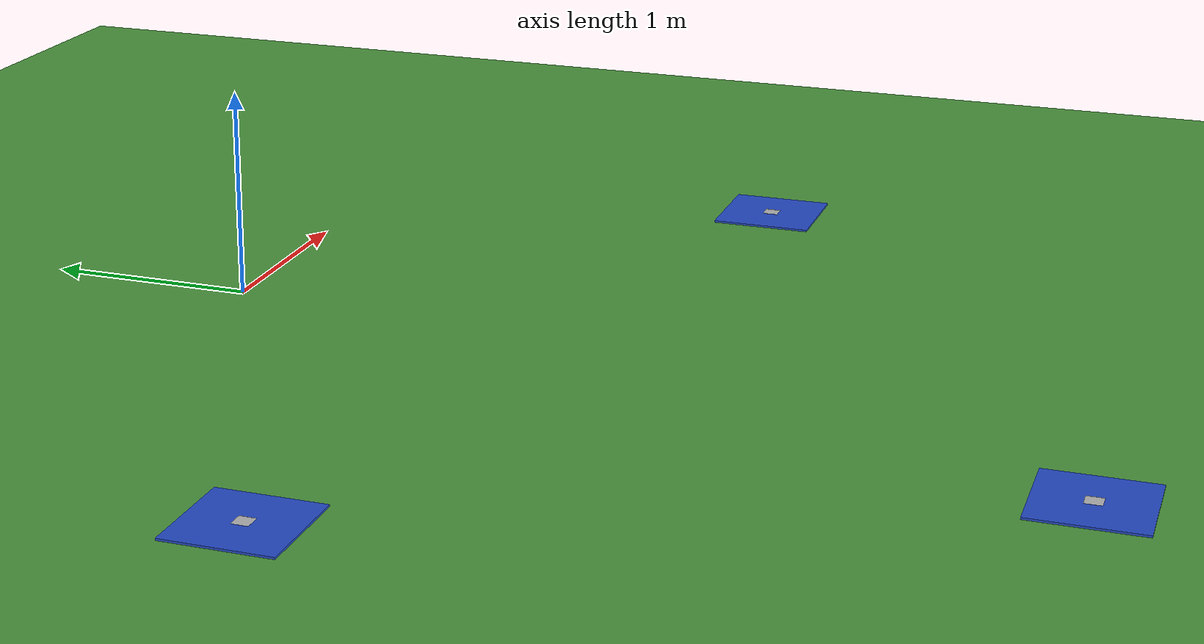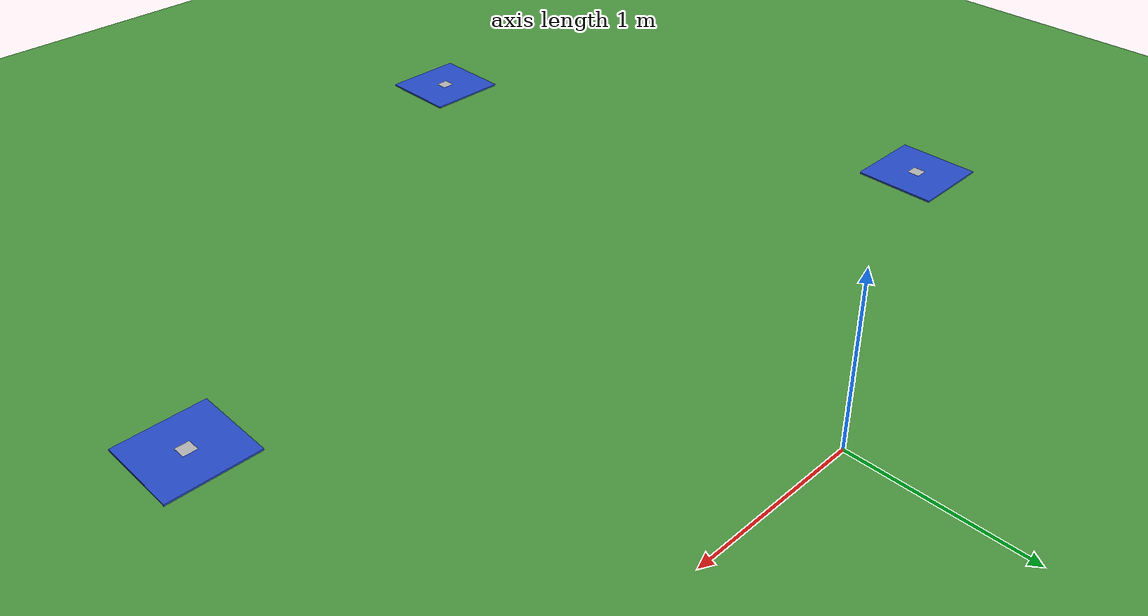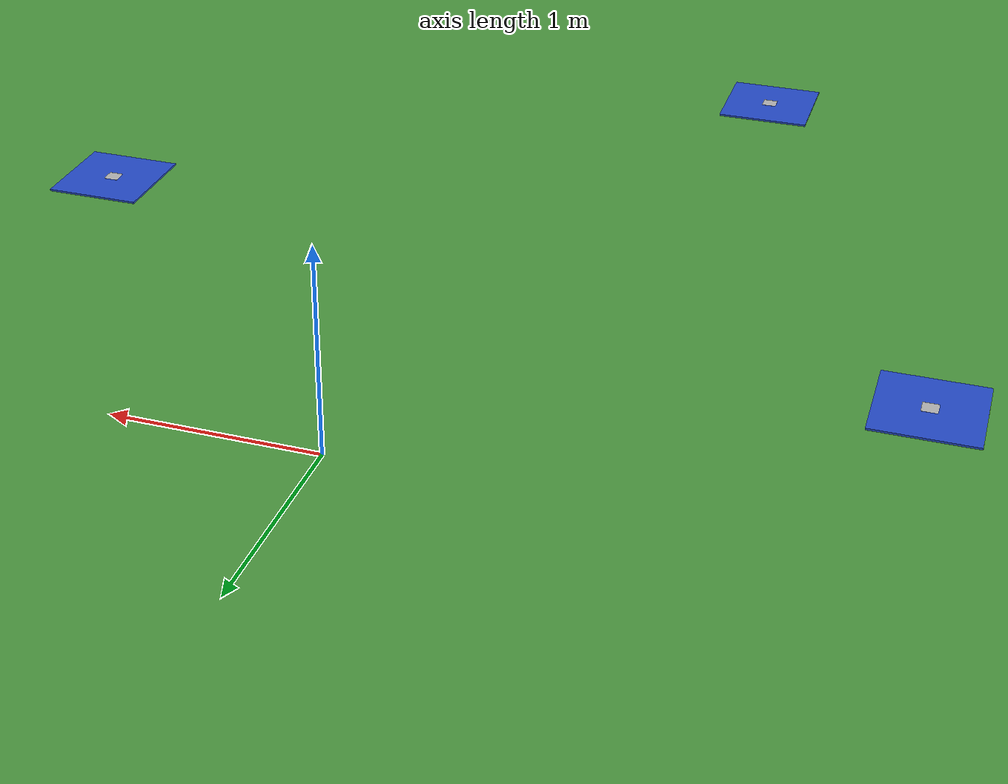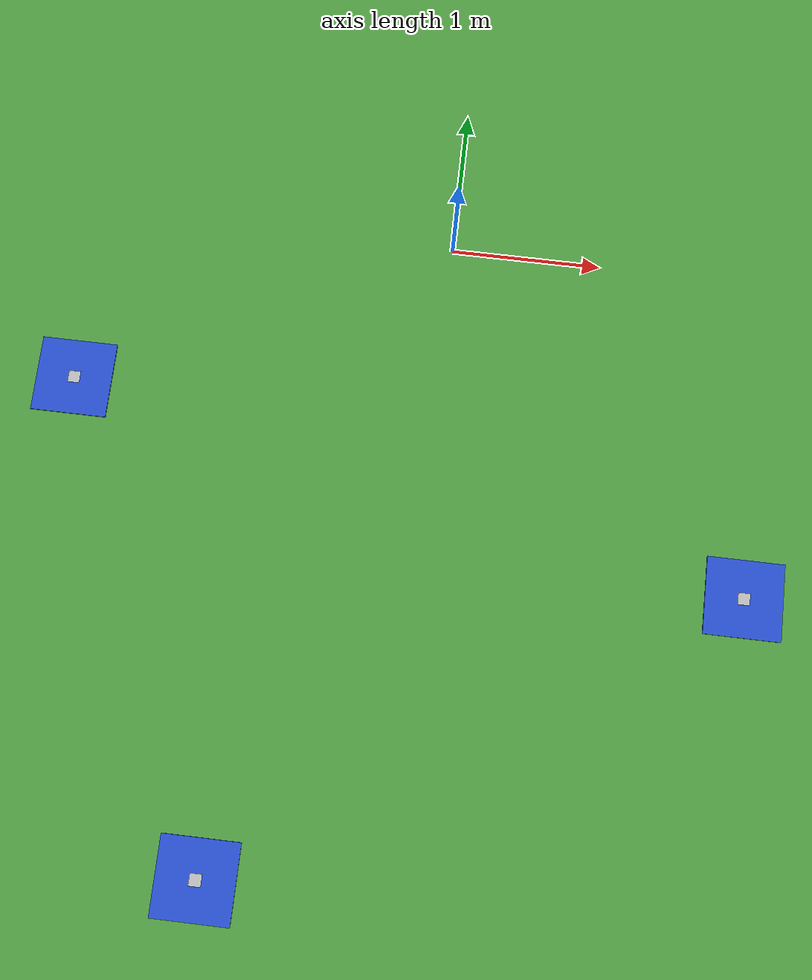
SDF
<sdf version="1.7">
 <world name="mrsim">
  <model name="ground_plane">
   <static>1</static>
   <link name="link">
    <collision name="collision">
     <geometry><plane><normal>0 0 1</normal><size>5000 5000</size></plane></geometry>
     <surface><friction><ode><mu>1</mu><mu2>1</mu2></ode></friction></surface>
    </collision>
    <visual name="grass">
     <cast_shadows>0</cast_shadows>
     <geometry><plane><normal>0 0 1</normal><size>5000 5000</size></plane></geometry>
     <material>
      <script><uri>file://media/materials/scripts/gazebo.material</uri><name>Gazebo/Grass</name></script>
     </material>
    </visual>
   </link>
  </model>
  <model name="blue_box">
   <link name="plate">
    <collision name="collision">
     <geometry><box><size>0.5 0.5 0.01</size></box></geometry>
     <surface><friction><ode><mu>0</mu><mu2>0</mu2></ode></friction></surface>
    </collision>
    <visual name="visual">
     <geometry><box><size>0.5 0.5 0.01</size></box></geometry>
     <material>
      <script><uri>file://media/materials/scripts/gazebo.material</uri><name>Gazebo/Blue</name></script>
     </material>
    </visual>
    <inertial>
     <inertia><ixx>1</ixx><ixy>0</ixy><ixz>0</ixz><iyy>1</iyy><iyz>0</iyz><izz>1</izz></inertia>
     <mass>1</mass>
    </inertial>
    <velocity>0 0 0 0 -0 0</velocity>
    <acceleration>-0.004713 -9.7911 9.79156 0.732639 -0.009423 -4.3e-05</acceleration>
    <wrench>-0.004713 -9.7911 9.79156 0 -0 0</wrench>
   </link>
   <frame name="aruco_6X6_250_10::__model__" attached_to="aruco_6X6_250_10::tag">
    <pose relative_to="__model__">0 0 0.005 0 -0 0</pose>
   </frame>
   <link name="aruco_6X6_250_10::tag">
    <gravity>0</gravity>
    <inertial>
     <mass>0.001</mass>
     <inertia><ixx>1e-05</ixx><ixy>0</ixy><ixz>0</ixz><iyy>1e-05</iyy><iyz>0</iyz><izz>1e-05</izz></inertia>
    </inertial>
    <visual name="front">
     <pose>0 0 0 0 -0 1.57075</pose>
     <geometry><box><size>0.077143 0.077143 0.0005</size></box></geometry>
     <material>
      <script>
       <uri>model://aruco_6X6_250_10/materials/scripts</uri>
       <uri>model://aruco_6X6_250_10/materials/textures</uri>
       <name>aruco_6X6_250_10/Marker</name>
      </script>
     </material>
    </visual>
    <visual name="back">
     <pose>0 0 -0.001 0 -0 1.57075</pose>
     <geometry><box><size>0.077143 0.077143 0.001</size></box></geometry>
     <material><ambient>0 0 0 1</ambient><diffuse>0 0 0 1</diffuse></material>
    </visual>
    <pose relative_to="aruco_6X6_250_10::__model__">0 0 0 0 -0 0</pose>
   </link>
   <joint name="aruco_6X6_250_10_joint" type="fixed">
    <parent>plate</parent>
    <child>aruco_6X6_250_10::tag</child>
   </joint>
   <static>1</static>
   <pose>2.10311 -2.1268 0 0 -0 0</pose>
  </model>
  <model name="blue_box_0">
   <link name="plate">
    <collision name="collision">
     <geometry><box><size>0.5 0.5 0.01</size></box></geometry>
     <surface><friction><ode><mu>0</mu><mu2>0</mu2></ode></friction></surface>
    </collision>
    <visual name="visual">
     <geometry><box><size>0.5 0.5 0.01</size></box></geometry>
     <material>
      <script><uri>file://media/materials/scripts/gazebo.material</uri><name>Gazebo/Blue</name></script>
     </material>
    </visual>
    <inertial>
     <inertia><ixx>1</ixx><ixy>0</ixy><ixz>0</ixz><iyy>1</iyy><iyz>0</iyz><izz>1</izz></inertia>
     <mass>1</mass>
    </inertial>
    <velocity>0 0 0 0 -0 0</velocity>
    <acceleration>-0.004713 -9.7911 9.79156 0.732639 -0.009423 -4.3e-05</acceleration>
    <wrench>-0.004713 -9.7911 9.79156 0 -0 0</wrench>
   </link>
   <frame name="aruco_6X6_250_10::__model__" attached_to="aruco_6X6_250_10::tag">
    <pose relative_to="__model__">0 0 0.005 0 -0 0</pose>
   </frame>
   <link name="aruco_6X6_250_10::tag">
    <gravity>0</gravity>
    <inertial>
     <mass>0.001</mass>
     <inertia><ixx>1e-05</ixx><ixy>0</ixy><ixz>0</ixz><iyy>1e-05</iyy><iyz>0</iyz><izz>1e-05</izz></inertia>
    </inertial>
    <visual name="front">
     <pose>0 0 0 0 -0 1.57075</pose>
     <geometry><box><size>0.077143 0.077143 0.0005</size></box></geometry>
     <material>
      <script>
       <uri>model://aruco_6X6_250_10/materials/scripts</uri>
       <uri>model://aruco_6X6_250_10/materials/textures</uri>
       <name>aruco_6X6_250_10/Marker</name>
      </script>
     </material>
    </visual>
    <visual name="back">
     <pose>0 0 -0.001 0 -0 1.57075</pose>
     <geometry><box><size>0.077143 0.077143 0.001</size></box></geometry>
     <material><ambient>0 0 0 1</ambient><diffuse>0 0 0 1</diffuse></material>
    </visual>
    <pose relative_to="aruco_6X6_250_10::__model__">0 0 0 0 -0 0</pose>
   </link>
   <joint name="aruco_6X6_250_10_joint" type="fixed">
    <parent>plate</parent>
    <child>aruco_6X6_250_10::tag</child>
   </joint>
   <static>1</static>
   <pose>-2.39745 -1.16741 0 0 -0 0</pose>
  </model>
  <model name="blue_box_5">
   <link name="plate">
    <collision name="collision">
     <geometry><box><size>0.5 0.5 0.01</size></box></geometry>
     <surface><friction><ode><mu>0</mu><mu2>0</mu2></ode></friction></surface>
    </collision>
    <visual name="visual">
     <geometry><box><size>0.5 0.5 0.01</size></box></geometry>
     <material>
      <script><uri>file://media/materials/scripts/gazebo.material</uri><name>Gazebo/Blue</name></script>
     </material>
    </visual>
    <inertial>
     <inertia><ixx>1</ixx><ixy>0</ixy><ixz>0</ixz><iyy>1</iyy><iyz>0</iyz><izz>1</izz></inertia>
     <mass>1</mass>
    </inertial>
    <velocity>0 0 0 0 -0 0</velocity>
    <acceleration>-0.004713 -9.7911 9.79156 0.732639 -0.009423 -4.3e-05</acceleration>
    <wrench>-0.004713 -9.7911 9.79156 0 -0 0</wrench>
   </link>
   <frame name="aruco_6X6_250_10::__model__" attached_to="aruco_6X6_250_10::tag">
    <pose relative_to="__model__">0 0 0.005 0 -0 0</pose>
   </frame>
   <link name="aruco_6X6_250_10::tag">
    <gravity>0</gravity>
    <inertial>
     <mass>0.001</mass>
     <inertia><ixx>1e-05</ixx><ixy>0</ixy><ixz>0</ixz><iyy>1e-05</iyy><iyz>0</iyz><izz>1e-05</izz></inertia>
    </inertial>
    <visual name="front">
     <pose>0 0 0 0 -0 1.57075</pose>
     <geometry><box><size>0.077143 0.077143 0.0005</size></box></geometry>
     <material>
      <script>
       <uri>model://aruco_6X6_250_10/materials/scripts</uri>
       <uri>model://aruco_6X6_250_10/materials/textures</uri>
       <name>aruco_6X6_250_10/Marker</name>
      </script>
     </material>
    </visual>
    <visual name="back">
     <pose>0 0 -0.001 0 -0 1.57075</pose>
     <geometry><box><size>0.077143 0.077143 0.001</size></box></geometry>
     <material><ambient>0 0 0 1</ambient><diffuse>0 0 0 1</diffuse></material>
    </visual>
    <pose relative_to="aruco_6X6_250_10::__model__">0 0 0 0 -0 0</pose>
   </link>
   <joint name="aruco_6X6_250_10_joint" type="fixed">
    <parent>plate</parent>
    <child>aruco_6X6_250_10::tag</child>
   </joint>
   <static>1</static>
   <pose>-1.11715 -4.22919 0 0 -0 0</pose>
  </model>
 </world>
</sdf>
